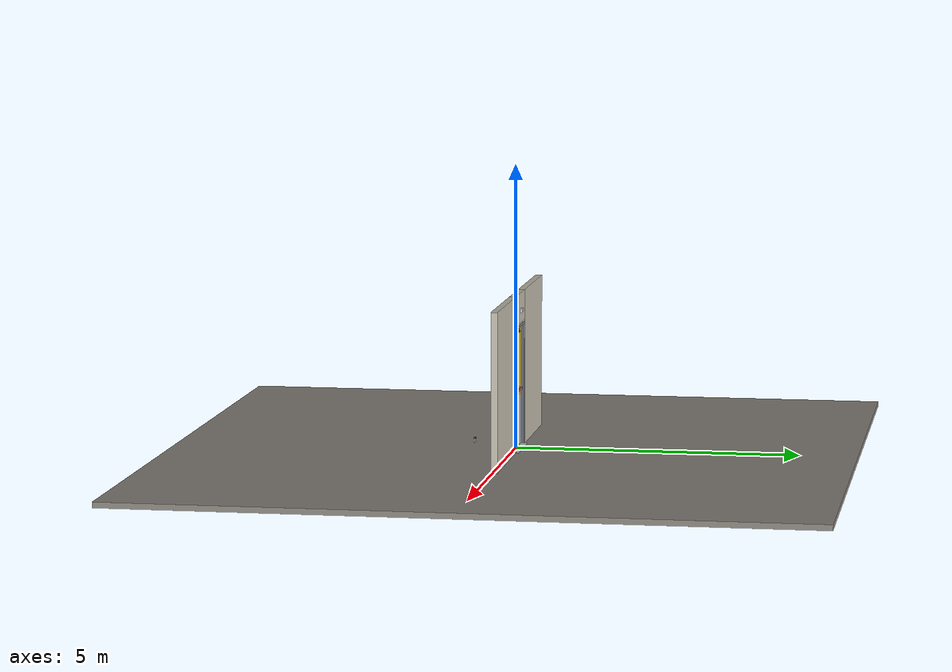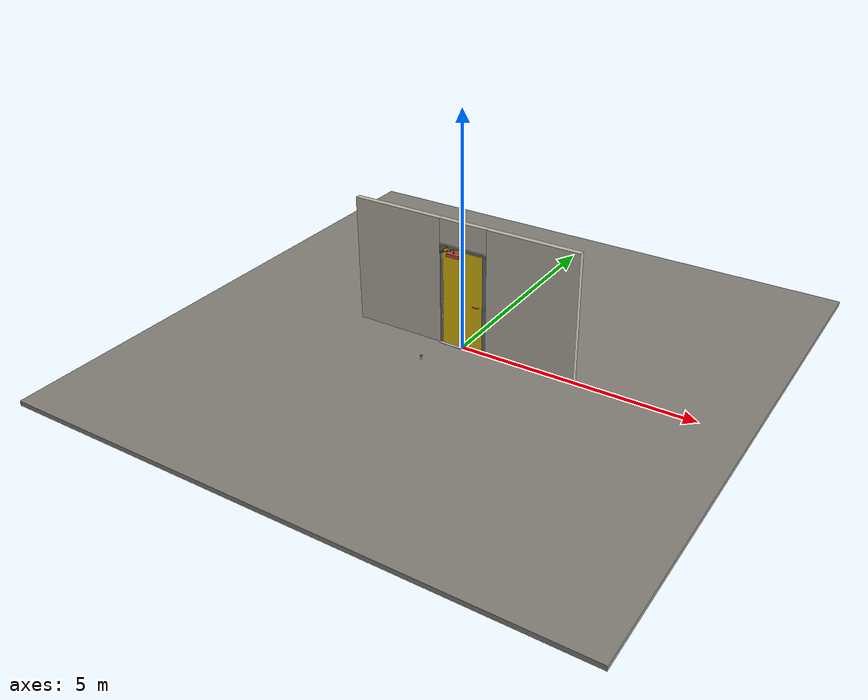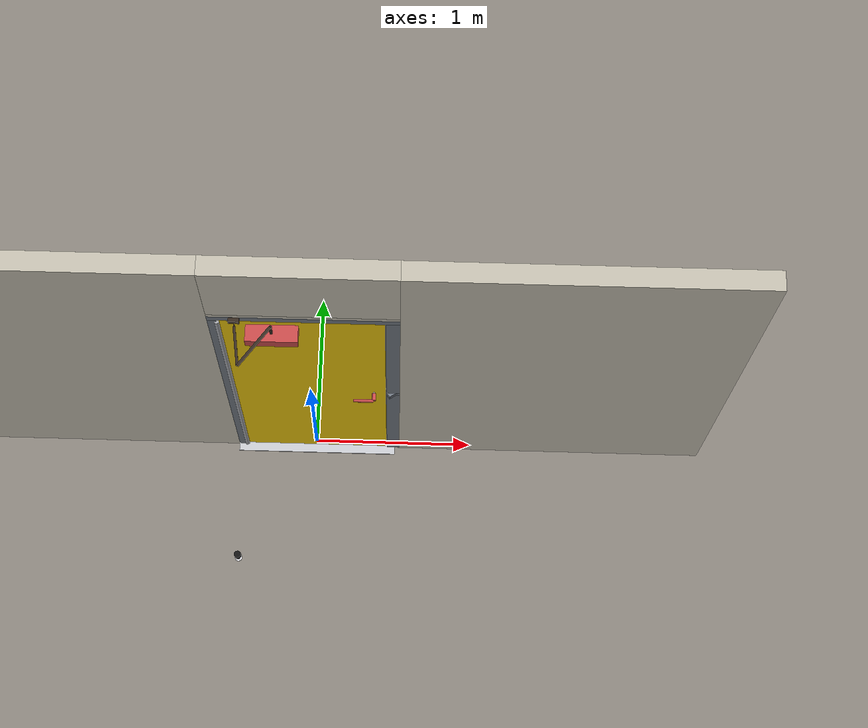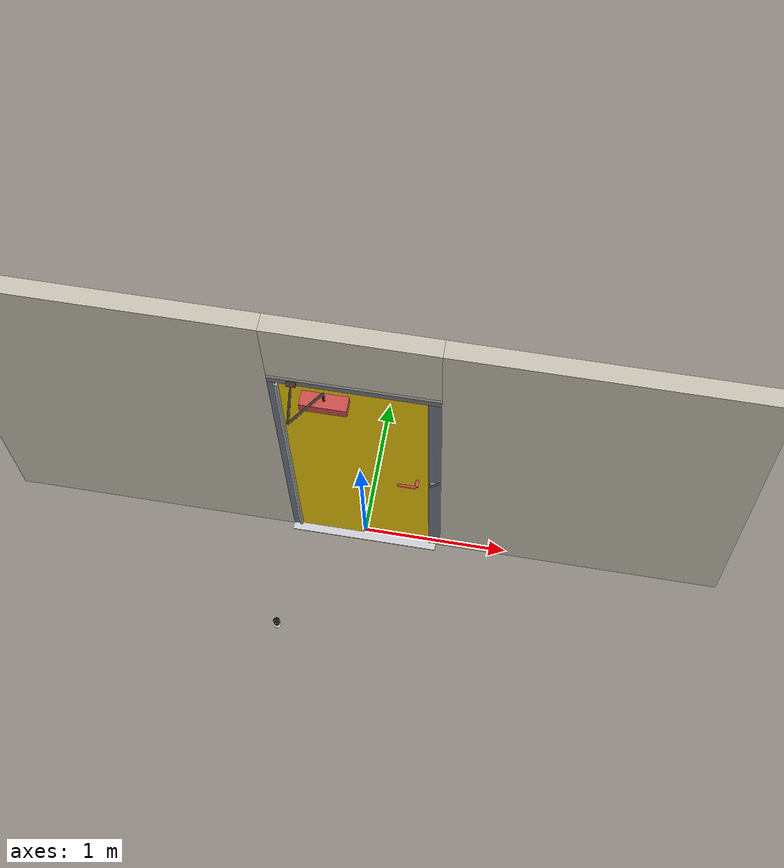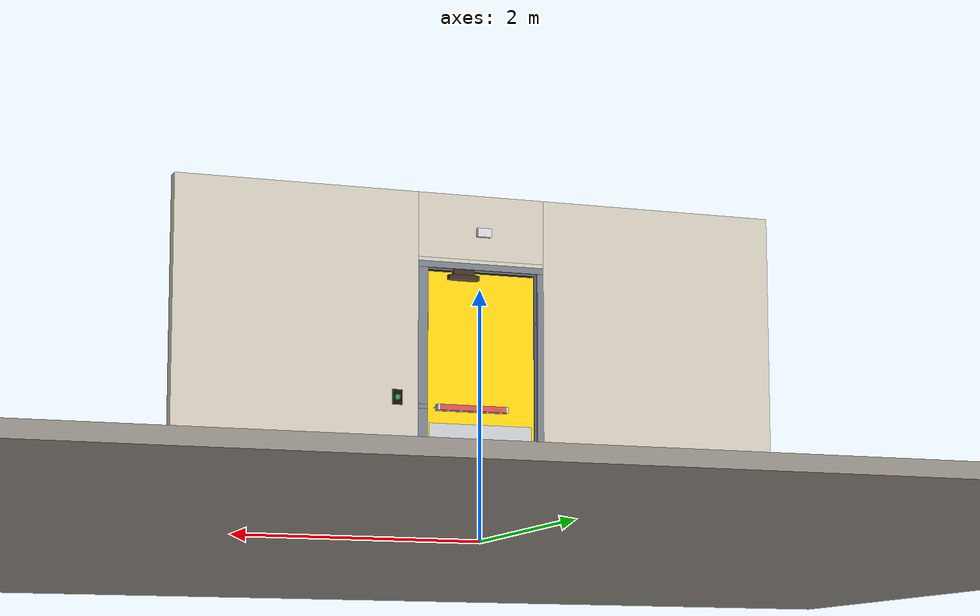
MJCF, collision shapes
<?xml version="1.0" ?>
<mujoco model="db0286_swing_single_full">
  <compiler angle="radian" meshdir="../../hardware" texturedir="../../textures" autolimits="true" inertiafromgeom="false"/>
  <option timestep="0.002" integrator="implicitfast" cone="elliptic" impratio="10" noslip_iterations="3">
    <flag multiccd="enable"/>
  </option>
  <size memory="16M"/>
  <default>
    <geom condim="4" solref="0.005 1" solimp="0.95 0.99 0.001"/>
    <joint solreflimit="0.005 1" solimplimit="0.95 0.99 0.001"/>
    <tendon solreflimit="0.005 1"/>
    <equality solref="0.002 1"/>
  </default>
  <visual>
    <headlight ambient="0.4 0.4 0.4" diffuse="0.7 0.7 0.7" specular="0.2 0.2 0.2"/>
    <quality shadowsize="4096"/>
    <map znear="0.01" zfar="60"/>
  </visual>
  <asset>
    <mesh name="closer_body_fdc4667657" file="closer_body_fdc4667657.obj"/>
    <mesh name="exit_sign_a6449bfa2c" file="exit_sign_a6449bfa2c.obj"/>
    <mesh name="lever_9f02b544cf" file="lever_9f02b544cf.obj"/>
    <mesh name="touchbar_pad_5c88f1c24f" file="touchbar_pad_5c88f1c24f.obj"/>
    <material name="mat_floor" rgba="0.55 0.53 0.5 1" specular="0.2" shininess="0.15" reflectance="0"/>
    <material name="mat_wall" rgba="0.78 0.76 0.7 1" specular="0.2" shininess="0.1" reflectance="0"/>
    <material name="mat_leaf" rgba="0.95 0.8 0.05 1" specular="0.23" shininess="0.52" reflectance="0.02"/>
    <material name="mat_hinge" rgba="0.65 0.66 0.68 1" specular="0.74" shininess="0.5" reflectance="0.36"/>
    <material name="mat_op_stainless" rgba="0.75 0.76 0.77 1" specular="0.8" shininess="0.65" reflectance="0.4"/>
    <material name="mat_op_nickel_satin" rgba="0.72 0.7 0.66 1" specular="0.8" shininess="0.65" reflectance="0.4"/>
    <material name="mat_trim" rgba="0.85 0.66 0.3 1" specular="0.8" shininess="0.75" reflectance="0.4"/>
    <material name="mat_bolt" rgba="0.75 0.76 0.77 1" specular="0.8" shininess="0.65" reflectance="0.4"/>
    <material name="mat_maglock" rgba="0.22 0.17 0.13 1" specular="0.8" shininess="0.6" reflectance="0.4"/>
    <material name="mat_frame" rgba="0.45 0.48 0.52 1" specular="0.32" shininess="0.6" reflectance="0.08"/>
    <material name="mat_seal" rgba="0.1 0.1 0.1 1" specular="0.2" shininess="0.1" reflectance="0"/>
    <material name="mat_threshold" rgba="0.8 0.81 0.83 1" specular="0.8" shininess="0.6" reflectance="0.4"/>
    <material name="mat_closer" rgba="0.22 0.17 0.13 1" specular="0.8" shininess="0.6" reflectance="0.4"/>
    <material name="mat_kick" rgba="0.75 0.76 0.77 1" specular="0.8" shininess="0.65" reflectance="0.4"/>
    <material name="mat_exit_sign" rgba="0.85 0.1 0.1 1" specular="0.2" shininess="0.6" reflectance="0"/>
    <material name="mat_sign_bracket" rgba="0.8 0.81 0.83 1" specular="0.8" shininess="0.6" reflectance="0.4"/>
    <material name="mat_wallreader" rgba="0.05 0.05 0.05 1" specular="0.38" shininess="0.3" reflectance="0.12"/>
    <material name="mat_rex" rgba="0.1 0.6 0.2 1" specular="0.2" shininess="0.6" reflectance="0"/>
    <material name="mat_bumper_stop" rgba="0.08 0.08 0.08 1" specular="0.2" shininess="0.1" reflectance="0"/>
    <material name="mat_stop_base" rgba="0.9 0.9 0.92 1" specular="0.8" shininess="0.9" reflectance="0.4"/>
    <texture name="skybox" type="skybox" builtin="gradient" rgb1="0.6 0.7 0.85" rgb2="0.9 0.92 0.95" width="256" height="256"/>
  </asset>
  <worldbody>
    <light name="sun" pos="1.5 -2.5 4" dir="-0.3 0.5 -0.8" directional="true" diffuse="0.8 0.8 0.8" specular="0.3 0.3 0.3" castshadow="true"/>
    <light name="fill" pos="-1.5 2.5 3" dir="0.3 -0.5 -0.7" directional="true" diffuse="0.35 0.35 0.4" castshadow="false"/>
    <camera name="robot_view" pos="0 -2.609312 1.812087" xyaxes="1 0 0 0 0.26963 0.962964" fovy="52"/>
    <camera name="far_view" pos="0 2.666313 1.812087" xyaxes="-1 0 0 0 -0.26963 0.962964" fovy="52"/>
    <camera name="iso" pos="2.004737 -2.187262 2.234138" xyaxes="0.741536 0.670913 0 -0.242917 0.268487 0.932151" fovy="46"/>
    <camera name="detail_handle" pos="0.4665 -0.877 1.32" xyaxes="0.97561 0.219512 0 -0.070934 0.315262 0.94635" fovy="38"/>
    <geom name="floor" type="box" size="6 6 0.05" pos="0 0 -0.05" material="mat_floor" group="0" contype="1" conaffinity="1" friction="0.8 0.005 0.0001" density="2400"/>
    <geom name="wall_left" type="box" size="0.99475 0.0575 1.3735" pos="-1.50525 0.0285 1.3735" material="mat_wall" group="0" contype="1" conaffinity="1" friction="0.6 0.005 0.0001" density="800"/>
    <geom name="wall_right" type="box" size="0.97975 0.0575 1.3735" pos="1.52025 0.0285 1.3735" material="mat_wall" group="0" contype="1" conaffinity="1" friction="0.6 0.005 0.0001" density="800"/>
    <geom name="wall_header" type="box" size="0.5255 0.0575 0.26" pos="0.015 0.0285 2.487" material="mat_wall" group="0" contype="1" conaffinity="1" friction="0.6 0.005 0.0001" density="800"/>
    <geom name="leaf_maglock_body" type="box" size="0.125 0.025 0.02" pos="0.1565 0.057 2.082" material="mat_maglock" group="0" contype="1" conaffinity="1" friction="0.6 0.005 0.0001" density="2000"/>
    <geom name="leaf_maglock_bracket" type="box" size="0.09 0.025 0.0225" pos="0.1565 0.057 2.1245" material="mat_maglock" group="1" contype="0" conaffinity="0" density="7850"/>
    <geom name="jamb_hinge" type="box" size="0.025 0.0575 1.0735" pos="-0.4855 0.0285 1.0735" material="mat_frame" group="0" contype="1" conaffinity="1" friction="0.6 0.005 0.0001" density="300"/>
    <geom name="strike_1040_wall_n" type="box" size="0.04 0.03825 0.018" pos="0.5005 0.04775 1.04" material="mat_frame" group="0" contype="1" conaffinity="1" friction="0.6 0.005 0.0001" density="300"/>
    <geom name="strike_1040_wall_p" type="box" size="0.04 0.008 0.018" pos="0.5005 -0.0175 1.04" material="mat_frame" group="0" contype="1" conaffinity="1" friction="0.6 0.005 0.0001" density="300"/>
    <geom name="strike_1040_ramp" type="box" size="0.04 0.018028 0.018" pos="0.503782 -0.018312 1.04" quat="0.957092 0 0 0.289784" material="mat_frame" group="0" contype="1" conaffinity="1" friction="0.12 0.005 0.0001" density="300"/>
    <geom name="strike_1040_back" type="box" size="0.0285 0.0095 0.018" pos="0.512 0 1.04" material="mat_frame" group="0" contype="1" conaffinity="1" friction="0.6 0.005 0.0001" density="300"/>
    <geom name="jamb_strike_0" type="box" size="0.04 0.0575 0.511" pos="0.5005 0.0285 0.511" material="mat_frame" group="0" contype="1" conaffinity="1" friction="0.6 0.005 0.0001" density="300"/>
    <geom name="jamb_strike_1" type="box" size="0.04 0.0575 0.5445" pos="0.5005 0.0285 1.6025" material="mat_frame" group="0" contype="1" conaffinity="1" friction="0.6 0.005 0.0001" density="300"/>
    <geom name="jamb_head" type="box" size="0.5255 0.0575 0.025" pos="0.015 0.0285 2.172" material="mat_frame" group="0" contype="1" conaffinity="1" friction="0.6 0.005 0.0001" density="300"/>
    <geom name="head_stud" type="box" size="0.5255 0.0575 0.015" pos="0.015 0.0285 2.212" material="mat_wall" group="0" contype="1" conaffinity="1" friction="0.6 0.005 0.0001" density="500"/>
    <geom name="stop_hinge" type="box" size="0.0055 0.016 1.0735" pos="-0.455 0.0385 1.0735" material="mat_frame" group="0" contype="1" conaffinity="1" friction="0.6 0.005 0.0001" density="300"/>
    <geom name="stop_strike" type="box" size="0.0055 0.016 1.0735" pos="0.455 0.0385 1.0735" material="mat_frame" group="0" contype="1" conaffinity="1" friction="0.6 0.005 0.0001" density="300"/>
    <geom name="stop_head" type="box" size="0.4605 0.016 0.0055" pos="0 0.0385 2.1415" material="mat_frame" group="0" contype="1" conaffinity="1" friction="0.6 0.005 0.0001" density="300"/>
    <geom name="seal_hinge" type="box" size="0.004 0.0025 1.0735" pos="-0.4575 0.0245 1.0735" material="mat_seal" group="1" contype="0" conaffinity="0" density="1100"/>
    <geom name="seal_strike" type="box" size="0.004 0.0025 1.0735" pos="0.4575 0.0245 1.0735" material="mat_seal" group="1" contype="0" conaffinity="0" density="1100"/>
    <geom name="seal_head" type="box" size="0.4405 0.0025 0.008" pos="0 0.0245 2.135" material="mat_seal" group="1" contype="0" conaffinity="0" density="1100"/>
    <geom name="threshold" type="box" size="0.5105 0.1075 0.004" pos="0 0.0285 0.004" material="mat_threshold" group="0" contype="1" conaffinity="1" friction="0.6 0.005 0.0001" density="2700"/>
    <geom name="closer_bracket" type="box" size="0.03 0.012 0.014" pos="-0.3605 -0.041 2.177" material="mat_closer" group="1" contype="0" conaffinity="0" density="2700"/>
    <geom name="exit_sign" type="mesh" mesh="exit_sign_a6449bfa2c" pos="0 0.15 2.447" material="mat_exit_sign" group="2" contype="0" conaffinity="0" density="500"/>
    <geom name="exit_sign_bracket" type="box" size="0.05775 0.02 0.035" pos="0 0.1055 2.447" material="mat_sign_bracket" group="2" contype="0" conaffinity="0" density="7850"/>
    <geom name="rex_plate" type="box" size="0.04 0.003 0.06" pos="0.7105 0.089 1.1" material="mat_wallreader" group="1" contype="0" conaffinity="0" density="1000"/>
    <geom name="door_stop_base" type="cylinder" size="0.022 0.003" pos="-0.4735 -0.8059 0.003" material="mat_stop_base" group="0" contype="1" conaffinity="1" friction="0.6 0.005 0.0001" density="7850"/>
    <geom name="door_stop_post" type="cylinder" size="0.012 0.0245" pos="-0.4735 -0.8059 0.0305" material="mat_stop_base" group="0" contype="1" conaffinity="1" friction="0.6 0.005 0.0001" density="7850"/>
    <geom name="door_stop_bumper" type="cylinder" size="0.022 0.02" pos="-0.4735 -0.8059 0.075" material="mat_bumper_stop" group="0" contype="1" conaffinity="1" friction="0.6 0.005 0.0001" density="1100"/>
    <site name="approach_point" pos="0 -1.5 0" quat="1 0 0 0" size="0.05" rgba="0.2 0.9 0.2 0.5" group="4"/>
    <site name="goal_point" pos="0 1.5 0" quat="1 0 0 0" size="0.05" rgba="0.2 0.9 0.2 0.5" group="4"/>
    <site name="door_plane_center" pos="0 0 1.0735" quat="1 0 0 0" size="0.02" rgba="0.2 0.9 0.2 0.5" group="4"/>
    <body name="rex_button" pos="0.7105 0.092 1.1">
      <inertial pos="0 0.004 0" mass="0.010053" quat="0 0 0.707107 -0.707107" diaginertia="0.000001059 0.000001059 0.000002011"/>
      <joint name="rex_button_slide" type="slide" axis="0 -1 0" limited="true" range="0 0.004" damping="1" stiffness="1500" springref="-0.004" armature="0.1"/>
      <geom name="rex_button_geom" type="cylinder" size="0.02 0.004" pos="0 0.004 0" quat="0.707107 -0.707107 0 0" material="mat_rex" group="0" contype="1" conaffinity="1" friction="0.6 0.005 0.0001" density="1000"/>
    </body>
    <body name="leaf" pos="-0.4605 0 0">
      <inertial pos="0.414614 -0.010025 1.156827" mass="66.357789" quat="-0.49912 0.472726 0.512664 0.514378" diaginertia="4.250119458 33.295142639 37.439909398"/>
      <joint name="leaf_hinge" type="hinge" axis="0 0 -1" pos="0.003 -0.029 0" limited="true" range="0 1.570796" solreflimit="0.02 1" damping="12.268966" frictionloss="3.165131" stiffness="15.508058" springref="-1.827437" armature="0.02"/>
      <geom name="leaf_slab" type="box" size="0.457 0.022 1.067" pos="0.46 0 1.076" material="mat_leaf" group="0" contype="1" conaffinity="1" friction="0.42 0.005 0.0001" density="1"/>
      <geom name="hinge_continuous" type="cylinder" size="0.0136 1.057" pos="0.003 -0.029 1.076" material="mat_hinge" group="1" contype="0" conaffinity="0" density="2700"/>
      <geom name="leaf_exit_device_rail" type="box" size="0.2942 0.006 0.025" pos="0.5428 0.028 1.04" material="mat_op_stainless" group="0" contype="1" conaffinity="1" friction="0.6 0.005 0.0001" density="3000"/>
      <geom name="leaf_exit_device_rail_end_n" type="box" size="0.01 0.0325 0.025" pos="0.2586 0.0545 1.04" material="mat_op_stainless" group="0" contype="1" conaffinity="1" friction="0.6 0.005 0.0001" density="3000"/>
      <geom name="leaf_exit_device_rail_end_p" type="box" size="0.01 0.0325 0.025" pos="0.827 0.0545 1.04" material="mat_op_stainless" group="0" contype="1" conaffinity="1" friction="0.6 0.005 0.0001" density="3000"/>
      <geom name="leaf_latch_bolt_faceplate" type="box" size="0.0006 0.014 0.028" pos="0.9164 0 1.04" material="mat_bolt" group="1" contype="0" conaffinity="0" density="8500"/>
      <geom name="leaf_maglock_armature" type="box" size="0.09 0.005 0.02" pos="0.617 0.027 2.082" material="mat_maglock" group="1" contype="0" conaffinity="0" density="7800"/>
      <geom name="closer_body" type="mesh" mesh="closer_body_fdc4667657" pos="0.3 -0.022 2.054" quat="0.707107 0.707107 0 0" material="mat_closer" group="1" contype="0" conaffinity="0" density="2000"/>
      <geom name="closer_body_col" type="box" size="0.145 0.05 0.035" pos="0.3 -0.072 2.054" material="mat_closer" group="3" contype="1" conaffinity="1" rgba="0.8 0.3 0.3 0.25" friction="0.6 0.005 0.0001" density="2000"/>
      <geom name="closer_pinion_shaft" type="cylinder" size="0.008 0.0615" pos="0.3 -0.072 2.1155" material="mat_closer" group="1" contype="0" conaffinity="0" density="2700"/>
      <geom name="kick_plate_p" type="box" size="0.427 0.0008 0.125" pos="0.46 0.0228 0.144" material="mat_kick" group="2" contype="0" conaffinity="0" density="7900"/>
      <geom name="armor_plate" type="box" size="0.427 0.0008 0.45" pos="0.46 0.0228 0.469" material="mat_kick" group="2" contype="0" conaffinity="0" density="7900"/>
      <site name="leaf_edge_mid" pos="0.917 0 1.067" quat="1 0 0 0" size="0.02" rgba="0.2 0.9 0.2 0.5" group="4"/>
      <body name="leaf_exit_device" pos="0.5428 0.022 1.04">
        <inertial pos="0 0.05 0" mass="4.39344" quat="0 0 0.707107 0.707107" diaginertia="0.001070901 0.108041192 0.108453077"/>
        <joint name="leaf_exit_device_slide" type="slide" axis="0 -1 0" limited="true" range="0 0.016" damping="153.70715" frictionloss="0.5" stiffness="1300" springref="-0.015385" armature="0.15"/>
        <geom name="leaf_exit_device_pad" type="mesh" mesh="touchbar_pad_5c88f1c24f" pos="0 0 0" quat="-0.707107 0.707107 0 0" material="mat_op_stainless" group="1" contype="0" conaffinity="0" density="3000"/>
        <geom name="leaf_exit_device_pad_col" type="box" size="0.2712 0.015 0.0225" pos="0 0.05 0" material="mat_op_stainless" group="3" contype="1" conaffinity="1" rgba="0.8 0.3 0.3 0.25" friction="0.8 0.01 0.0001" density="3000"/>
        <site name="leaf_exit_device_push" pos="0 0.065 0" quat="1 0 0 0" size="0.015" rgba="0.2 0.9 0.2 0.5" group="4"/>
      </body>
      <body name="leaf_far_lever" pos="0.847 0 1.04">
        <inertial pos="-0.02707 -0.051489 0" mass="0.515728" quat="-0.245847 0 0 0.969309" diaginertia="0.000250139 0.001100166 0.001260724"/>
        <joint name="leaf_far_lever_hinge" type="hinge" axis="0 -1 0" limited="true" range="0 0.01" damping="0.23274" frictionloss="0.048" stiffness="1.2" springref="-0.458333" armature="0.01"/>
        <geom name="leaf_far_lever_spindle" type="cylinder" size="0.006 0.03" pos="0 0 0" quat="0.707107 -0.707107 0 0" material="mat_op_nickel_satin" group="1" contype="0" conaffinity="0" density="7850"/>
        <geom name="leaf_far_lever_lever_n" type="mesh" mesh="lever_9f02b544cf" pos="0 -0.022 0" quat="0.707107 0.707107 0 0" material="mat_op_nickel_satin" group="1" contype="0" conaffinity="0" density="3000"/>
        <geom name="leaf_far_lever_lever_col_n" type="capsule" size="0.0095 0.053" pos="-0.0625 -0.077 0" quat="0.707107 0 -0.707107 0" material="mat_op_nickel_satin" group="3" contype="1" conaffinity="1" rgba="0.8 0.3 0.3 0.25" friction="0.7 0.01 0.0001" density="3000"/>
        <geom name="leaf_far_lever_hub_col_n" type="cylinder" size="0.012 0.022" pos="0 -0.052 0" quat="0.707107 -0.707107 0 0" material="mat_op_nickel_satin" group="3" contype="1" conaffinity="1" rgba="0.8 0.3 0.3 0.25" friction="0.6 0.005 0.0001" density="3000"/>
        <site name="leaf_far_lever_grip_n" pos="-0.1 -0.077 0" quat="1 0 0 0" size="0.012" rgba="0.2 0.9 0.2 0.5" group="4"/>
      </body>
      <body name="leaf_latch_bolt" pos="0.917 0 1.04">
        <inertial pos="-0.0055 0 0" mass="0.074627" quat="0.92388 -0.382683 0 0" diaginertia="0.000002271 0.000013255 0.000013255"/>
        <joint name="leaf_latch_bolt_slide" type="slide" axis="-1 0 0" limited="true" range="0 0.019" damping="2" frictionloss="0.3" stiffness="550" springref="-0.01" armature="0.1"/>
        <geom name="leaf_latch_bolt_capsule" type="capsule" size="0.008 0.0165" pos="-0.0055 0 0" quat="0.707107 0 0.707107 0" material="mat_bolt" group="0" contype="1" conaffinity="1" friction="0.2 0.005 0.0001" density="8500"/>
      </body>
      <body name="closer_arm_main" pos="0.3 -0.072 2.177" quat="0.454107 0 0 -0.890947">
        <inertial pos="0.14 0 0" mass="0.12096" quat="1 0 0 0" diaginertia="0.000003588 0.00079128 0.000792852"/>
        <joint name="closer_pinion" type="hinge" axis="0 0 1" limited="false" damping="0.01" armature="0.002"/>
        <geom name="closer_arm_main_geom" type="box" size="0.14 0.008 0.005" pos="0.14 0 0" material="mat_closer" group="1" contype="0" conaffinity="0" density="2700"/>
        <body name="closer_arm_fore" pos="0.28 0 0" quat="-0.373215 0 0 0.927745">
          <inertial pos="0.128088 0 0" mass="0.076531" quat="1 0 0 0" diaginertia="0.000001771 0.000437665 0.000438201"/>
          <joint name="closer_elbow" type="hinge" axis="0 0 1" limited="false" damping="0.01" armature="0.002"/>
          <geom name="closer_arm_fore_geom" type="box" size="0.1125 0.007 0.004" pos="0.1125 0 0" material="mat_closer" group="1" contype="0" conaffinity="0" density="2700"/>
          <geom name="closer_fore_neck" type="box" size="0.0175 0.003 0.003" pos="0.2425 0 0" material="mat_closer" group="1" contype="0" conaffinity="0" density="2700"/>
          <geom name="closer_fore_pivot" type="cylinder" size="0.005 0.012" pos="0.26 0 0" material="mat_closer" group="1" contype="0" conaffinity="0" density="2700"/>
        </body>
      </body>
    </body>
  </worldbody>
  <tendon>
    <fixed name="leaf_latch_bolt_coupling" limited="true" range="0 10">
      <joint joint="leaf_latch_bolt_slide" coef="1"/>
      <joint joint="leaf_exit_device_slide" coef="-1.357143"/>
      <joint joint="leaf_far_lever_hinge" coef="-0.020879"/>
    </fixed>
  </tendon>
  <equality>
    <weld name="leaf_maglock" body1="leaf" body2="world" active="true"/>
    <connect name="closer_arm_connect" body1="closer_arm_fore" body2="world" anchor="0.26 0 0" active="true"/>
  </equality>
  <contact>
    <exclude body1="closer_arm_main" body2="leaf"/>
    <exclude body1="closer_arm_fore" body2="leaf"/>
    <exclude body1="closer_arm_main" body2="closer_arm_fore"/>
  </contact>
  <sensor>
    <jointpos name="leaf_hinge_pos" joint="leaf_hinge"/>
    <jointvel name="leaf_hinge_vel" joint="leaf_hinge"/>
    <jointpos name="leaf_exit_device_slide_pos" joint="leaf_exit_device_slide"/>
    <jointvel name="leaf_exit_device_slide_vel" joint="leaf_exit_device_slide"/>
    <jointpos name="leaf_far_lever_hinge_pos" joint="leaf_far_lever_hinge"/>
    <jointvel name="leaf_far_lever_hinge_vel" joint="leaf_far_lever_hinge"/>
    <jointpos name="leaf_latch_bolt_slide_pos" joint="leaf_latch_bolt_slide"/>
    <jointvel name="leaf_latch_bolt_slide_vel" joint="leaf_latch_bolt_slide"/>
    <jointpos name="rex_button_slide_pos" joint="rex_button_slide"/>
    <jointvel name="rex_button_slide_vel" joint="rex_button_slide"/>
  </sensor>
</mujoco>
